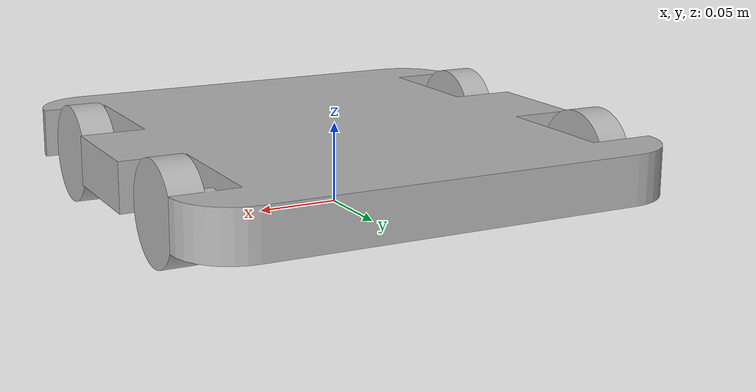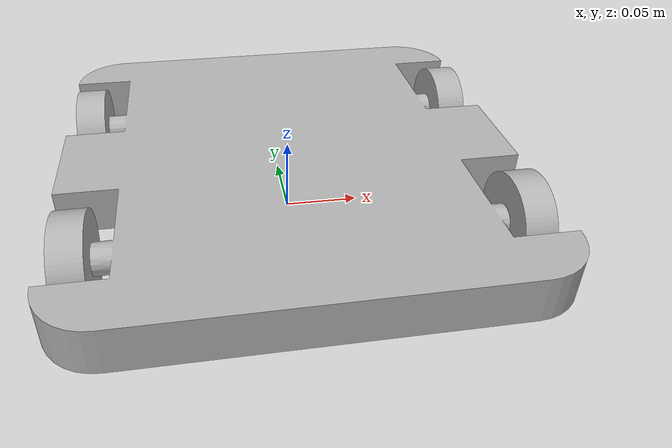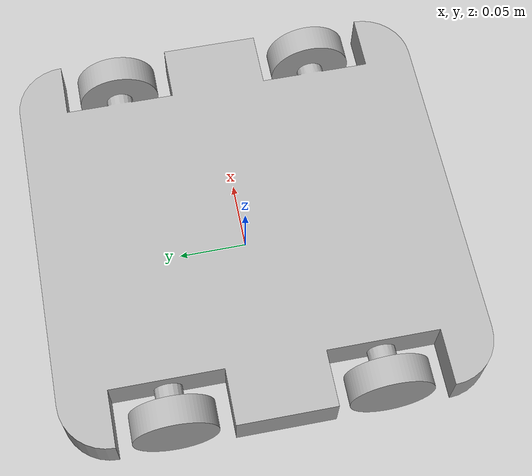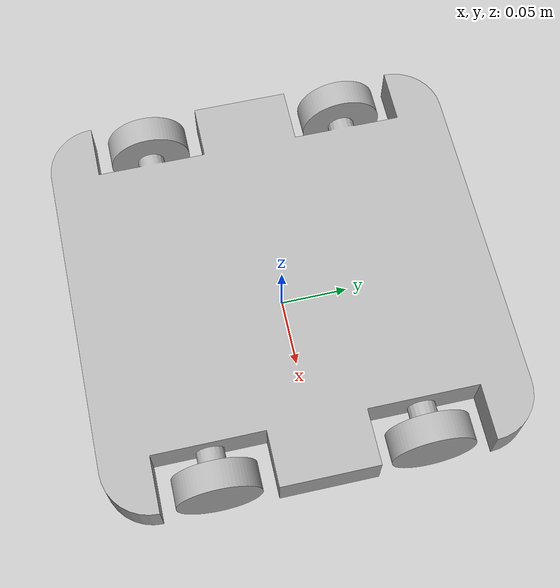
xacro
<?xml version="1.0" ?>
<robot name="navi" xmlns:xacro="http://www.ros.org/wiki/xacro">

<xacro:include filename="$(find navi_description)/urdf/materials.xacro" />
<xacro:include filename="$(find navi_description)/urdf/navi.trans" />
<xacro:include filename="$(find navi_description)/urdf/navi.gazebo" />

<link name="base_link">
  <inertial>
    <origin xyz="6.317846451554589e-17 3.1589232257772945e-17 0.03495908146861654" rpy="0 0 0"/>
    <mass value="18.080929224636563"/>
    <inertia ixx="0.13757" iyy="0.105998" izz="0.240864" ixy="0.0" iyz="0.0" ixz="0.0"/>
  </inertial>
  <visual>
    <origin xyz="0 0 0" rpy="0 0 0"/>
    <geometry>
      <mesh filename="package://navi_description/meshes/base_link.stl" scale="0.001 0.001 0.001"/>
    </geometry>
    <material name="silver"/>
  </visual>
  <collision>
    <origin xyz="0 0 0" rpy="0 0 0"/>
    <geometry>
      <mesh filename="package://navi_description/meshes/base_link.stl" scale="0.001 0.001 0.001"/>
    </geometry>
  </collision>
</link>

<link name="rw1_1">
  <inertial>
    <origin xyz="0.010000000000000064 1.3877787807814457e-17 -2.0816681711721685e-17" rpy="0 0 0"/>
    <mass value="0.44390704195223774"/>
    <inertia ixx="0.0002" iyy="0.000115" izz="0.000115" ixy="0.0" iyz="0.0" ixz="0.0"/>
  </inertial>
  <visual>
    <origin xyz="-0.125 -0.075 -0.03" rpy="0 0 0"/>
    <geometry>
      <mesh filename="package://navi_description/meshes/rw1_1.stl" scale="0.001 0.001 0.001"/>
    </geometry>
    <material name="silver"/>
  </visual>
  <collision>
    <origin xyz="-0.125 -0.075 -0.03" rpy="0 0 0"/>
    <geometry>
      <mesh filename="package://navi_description/meshes/rw1_1.stl" scale="0.001 0.001 0.001"/>
    </geometry>
  </collision>
</link>

<link name="rw2_1">
  <inertial>
    <origin xyz="0.010000000000000009 0.0 -1.3877787807814457e-17" rpy="0 0 0"/>
    <mass value="0.4439070419522374"/>
    <inertia ixx="0.0002" iyy="0.000115" izz="0.000115" ixy="-0.0" iyz="0.0" ixz="-0.0"/>
  </inertial>
  <visual>
    <origin xyz="-0.125 0.075 -0.03" rpy="0 0 0"/>
    <geometry>
      <mesh filename="package://navi_description/meshes/rw2_1.stl" scale="0.001 0.001 0.001"/>
    </geometry>
    <material name="silver"/>
  </visual>
  <collision>
    <origin xyz="-0.125 0.075 -0.03" rpy="0 0 0"/>
    <geometry>
      <mesh filename="package://navi_description/meshes/rw2_1.stl" scale="0.001 0.001 0.001"/>
    </geometry>
  </collision>
</link>

<link name="lw2_1">
  <inertial>
    <origin xyz="-0.009999999999999981 1.3877787807814457e-17 2.42861286636753e-17" rpy="0 0 0"/>
    <mass value="0.44390704195223774"/>
    <inertia ixx="0.0002" iyy="0.000115" izz="0.000115" ixy="-0.0" iyz="0.0" ixz="-0.0"/>
  </inertial>
  <visual>
    <origin xyz="0.125 -0.075 -0.03" rpy="0 0 0"/>
    <geometry>
      <mesh filename="package://navi_description/meshes/lw2_1.stl" scale="0.001 0.001 0.001"/>
    </geometry>
    <material name="silver"/>
  </visual>
  <collision>
    <origin xyz="0.125 -0.075 -0.03" rpy="0 0 0"/>
    <geometry>
      <mesh filename="package://navi_description/meshes/lw2_1.stl" scale="0.001 0.001 0.001"/>
    </geometry>
  </collision>
</link>

<link name="lw1_1">
  <inertial>
    <origin xyz="-0.009999999999999981 -2.7755575615628914e-17 2.42861286636753e-17" rpy="0 0 0"/>
    <mass value="0.44390704195223774"/>
    <inertia ixx="0.0002" iyy="0.000115" izz="0.000115" ixy="0.0" iyz="-0.0" ixz="-0.0"/>
  </inertial>
  <visual>
    <origin xyz="0.125 0.075 -0.03" rpy="0 0 0"/>
    <geometry>
      <mesh filename="package://navi_description/meshes/lw1_1.stl" scale="0.001 0.001 0.001"/>
    </geometry>
    <material name="silver"/>
  </visual>
  <collision>
    <origin xyz="0.125 0.075 -0.03" rpy="0 0 0"/>
    <geometry>
      <mesh filename="package://navi_description/meshes/lw1_1.stl" scale="0.001 0.001 0.001"/>
    </geometry>
  </collision>
</link>

<joint name="Revolute1" type="continuous">
  <origin xyz="0.125 0.075 0.03" rpy="0 0 0"/>
  <parent link="base_link"/>
  <child link="rw1_1"/>
  <axis xyz="1.0 -0.0 -0.0"/>
</joint>

<joint name="Revolute2" type="continuous">
  <origin xyz="0.125 -0.075 0.03" rpy="0 0 0"/>
  <parent link="base_link"/>
  <child link="rw2_1"/>
  <axis xyz="1.0 -0.0 -0.0"/>
</joint>

<joint name="Revolute3" type="continuous">
  <origin xyz="-0.125 0.075 0.03" rpy="0 0 0"/>
  <parent link="base_link"/>
  <child link="lw2_1"/>
  <axis xyz="1.0 0.0 0.0"/>
</joint>

<joint name="Revolute4" type="continuous">
  <origin xyz="-0.125 -0.075 0.03" rpy="0 0 0"/>
  <parent link="base_link"/>
  <child link="lw1_1"/>
  <axis xyz="1.0 0.0 0.0"/>
</joint>

</robot>

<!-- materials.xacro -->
<robot name="navi" xmlns:xacro="http://www.ros.org/wiki/xacro" >

<material name="silver">
  <color rgba="0.700 0.700 0.700 1.000"/>
</material>
<material name="black">
  <color rgba="0.000 0.000 0.000 1.000"/>
</material>

</robot>

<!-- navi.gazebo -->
<robot name="navi" xmlns:xacro="http://www.ros.org/wiki/xacro" >

<xacro:property name="body_color" value="Gazebo/Silver" />
<xacro:property name="w_color" value="Gazebo/Black" />

<gazebo>
  <plugin name="control" filename="libgazebo_ros_control.so"/>
</gazebo>

<gazebo>
  <plugin name="skid_steer_drive_controller" filename="libgazebo_ros_skid_steer_drive.so">
    <updateRate>100.0</updateRate>
    <leftFrontJoint>Revolute2</leftFrontJoint>
    <rightFrontJoint>Revolute4</rightFrontJoint>
    <leftRearJoint>Revolute1</leftRearJoint>
    <rightRearJoint>Revolute3</rightRearJoint>
    <covariance_x></covariance_x>
    <covariance_y></covariance_y>
    <covariance_yaw></covariance_yaw>
    <wheelSeparation>0.27</wheelSeparation>
    <wheelDiameter>0.02</wheelDiameter>
    <robotBaseFrame>base_link</robotBaseFrame>
    <commandTopic>cmd_vel</commandTopic>
    <odometryTopic>odom</odometryTopic>
    <odometryFrame>odom</odometryFrame>
    <torque>20</torque>
    <topicName>cmd_vel</topicName>
  </plugin>
</gazebo>

<gazebo reference="base_link">
  <material>${body_color}</material>
  <mu1>0.2</mu1>
  <mu2>0.2</mu2>
  <selfCollide>true</selfCollide>
  <gravity>true</gravity>
</gazebo>

<gazebo reference="rw1_1">
  <material>${w_color}</material>
  <mu1>0.2</mu1>
  <mu2>0.2</mu2>
  <selfCollide>true</selfCollide>
</gazebo>

<gazebo reference="rw2_1">
  <material>${w_color}</material>
  <mu1>0.2</mu1>
  <mu2>0.2</mu2>
  <selfCollide>true</selfCollide>
</gazebo>

<gazebo reference="lw2_1">
  <material>${w_color}</material>
  <mu1>0.2</mu1>
  <mu2>0.2</mu2>
  <selfCollide>true</selfCollide>
</gazebo>

<gazebo reference="lw1_1">
  <material>${w_color}</material>
  <mu1>0.2</mu1>
  <mu2>0.2</mu2>
  <selfCollide>true</selfCollide>
</gazebo>

</robot>
